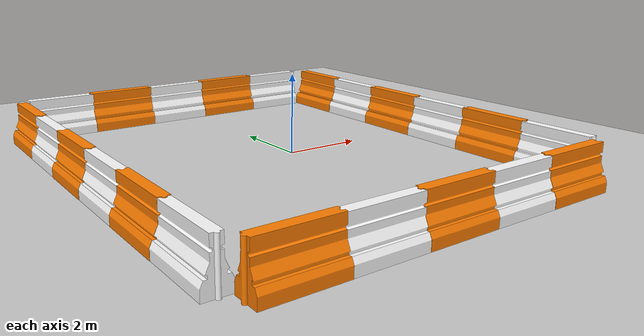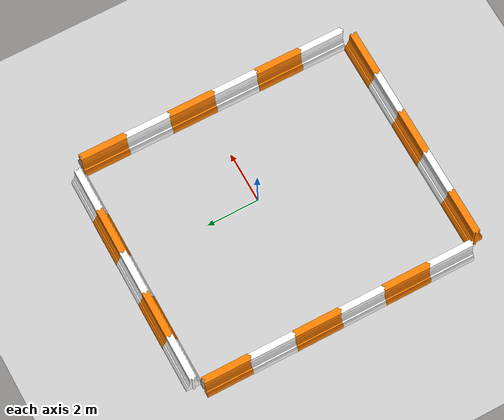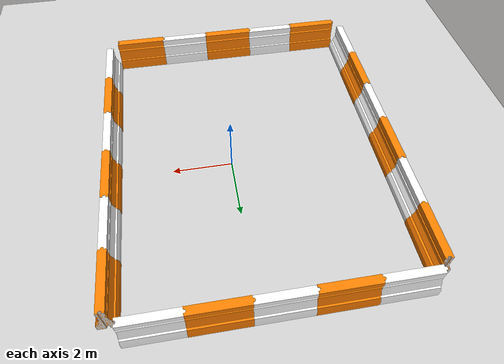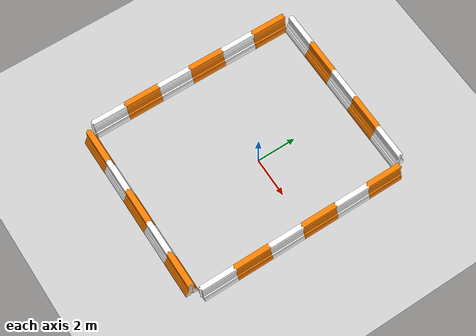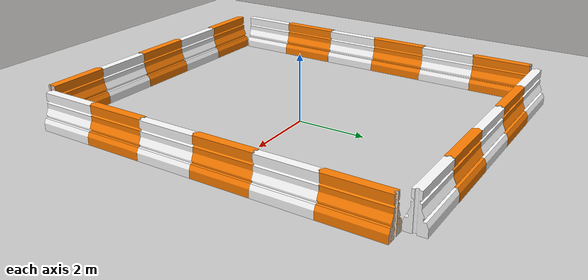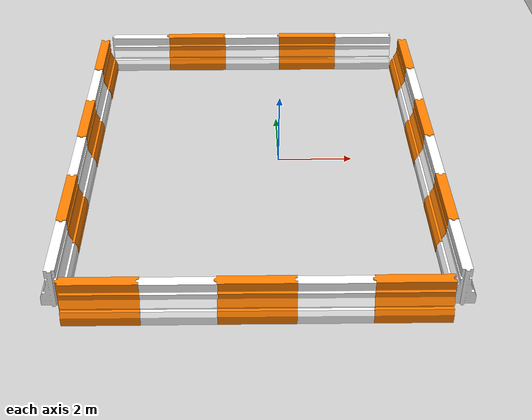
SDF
<sdf version="1.4">
 <world name="default">
  <light name="sun" type="directional">
   <pose>0 0 10 0 -0 0</pose>
   <diffuse>0.8 0.8 0.8 1</diffuse>
   <specular>0.2 0.2 0.2 1</specular>
   <attenuation>
    <range>1000</range>
    <constant>0.9</constant>
    <linear>0.01</linear>
    <quadratic>0.001</quadratic>
   </attenuation>
   <direction>-0.5 0.1 -0.9</direction>
  </light>
  <physics type="ode">
   <max_step_size>0.001</max_step_size>
   <real_time_factor>1</real_time_factor>
   <real_time_update_rate>1000</real_time_update_rate>
   <gravity>0 0 -9.8</gravity>
  </physics>
  <scene><ambient>0.4 0.4 0.4 1</ambient><background>0.7 0.7 0.7 1</background><shadows>1</shadows></scene>
  <spherical_coordinates>
   <surface_model>EARTH_WGS84</surface_model>
   <latitude_deg>0</latitude_deg>
   <longitude_deg>0</longitude_deg>
   <elevation>0</elevation>
   <heading_deg>0</heading_deg>
  </spherical_coordinates>
  <model name="drc_practice_organge_jersey_barrier_11">
   <static>1</static>
   <link name="link">
    <visual name="visual">
     <geometry>
      <mesh><uri>model://drc_practice_orange_jersey_barrier/meshes/jersey_barrier.dae</uri></mesh>
     </geometry>
    </visual>
    <collision name="collision">
     <geometry>
      <mesh><uri>model://drc_practice_orange_jersey_barrier/meshes/jersey_barrier.dae</uri></mesh>
     </geometry>
    </collision>
    <velocity_decay><linear>0</linear><angular>0</angular></velocity_decay>
   </link>
   <pose>4.00927 3.97639 0 0 -0 0</pose>
  </model>
  <model name="drc_practice_organge_jersey_barrier_12">
   <static>1</static>
   <link name="link">
    <visual name="visual">
     <geometry>
      <mesh><uri>model://drc_practice_orange_jersey_barrier/meshes/jersey_barrier.dae</uri></mesh>
     </geometry>
    </visual>
    <collision name="collision">
     <geometry>
      <mesh><uri>model://drc_practice_orange_jersey_barrier/meshes/jersey_barrier.dae</uri></mesh>
     </geometry>
    </collision>
    <velocity_decay><linear>0</linear><angular>0</angular></velocity_decay>
   </link>
   <pose>-2.3851 5.16969 0 0 0 -1.5708</pose>
  </model>
  <model name="drc_practice_white_jersey_barrier_8">
   <static>1</static>
   <link name="link">
    <visual name="visual">
     <geometry>
      <mesh><uri>model://drc_practice_white_jersey_barrier/meshes/jersey_barrier.dae</uri></mesh>
     </geometry>
    </visual>
    <collision name="collision">
     <geometry>
      <mesh><uri>model://drc_practice_white_jersey_barrier/meshes/jersey_barrier.dae</uri></mesh>
     </geometry>
    </collision>
    <velocity_decay><linear>0</linear><angular>0</angular></velocity_decay>
   </link>
   <pose>4.00519 2.23845 0 0 -0 0</pose>
  </model>
  <model name="drc_practice_white_jersey_barrier_9">
   <static>1</static>
   <link name="link">
    <visual name="visual">
     <geometry>
      <mesh><uri>model://drc_practice_white_jersey_barrier/meshes/jersey_barrier.dae</uri></mesh>
     </geometry>
    </visual>
    <collision name="collision">
     <geometry>
      <mesh><uri>model://drc_practice_white_jersey_barrier/meshes/jersey_barrier.dae</uri></mesh>
     </geometry>
    </collision>
    <velocity_decay><linear>0</linear><angular>0</angular></velocity_decay>
   </link>
   <pose>-5.28019 -4.60783 0 0 -0 0</pose>
  </model>
  <model name="drc_practice_organge_jersey_barrier_13">
   <static>1</static>
   <link name="link">
    <visual name="visual">
     <geometry>
      <mesh><uri>model://drc_practice_orange_jersey_barrier/meshes/jersey_barrier.dae</uri></mesh>
     </geometry>
    </visual>
    <collision name="collision">
     <geometry>
      <mesh><uri>model://drc_practice_orange_jersey_barrier/meshes/jersey_barrier.dae</uri></mesh>
     </geometry>
    </collision>
    <velocity_decay><linear>0</linear><angular>0</angular></velocity_decay>
   </link>
   <pose>3.99189 0.494887 0 0 -0 0</pose>
  </model>
  <model name="drc_practice_organge_jersey_barrier_14">
   <static>1</static>
   <link name="link">
    <visual name="visual">
     <geometry>
      <mesh><uri>model://drc_practice_orange_jersey_barrier/meshes/jersey_barrier.dae</uri></mesh>
     </geometry>
    </visual>
    <collision name="collision">
     <geometry>
      <mesh><uri>model://drc_practice_orange_jersey_barrier/meshes/jersey_barrier.dae</uri></mesh>
     </geometry>
    </collision>
    <velocity_decay><linear>0</linear><angular>0</angular></velocity_decay>
   </link>
   <pose>-5.27338 -2.87968 0 0 -0 0</pose>
  </model>
  <model name="drc_practice_white_jersey_barrier_10">
   <static>1</static>
   <link name="link">
    <visual name="visual">
     <geometry>
      <mesh><uri>model://drc_practice_white_jersey_barrier/meshes/jersey_barrier.dae</uri></mesh>
     </geometry>
    </visual>
    <collision name="collision">
     <geometry>
      <mesh><uri>model://drc_practice_white_jersey_barrier/meshes/jersey_barrier.dae</uri></mesh>
     </geometry>
    </collision>
    <velocity_decay><linear>0</linear><angular>0</angular></velocity_decay>
   </link>
   <pose>3.98445 -1.23783 0 0 -0 0</pose>
  </model>
  <model name="drc_practice_organge_jersey_barrier_15">
   <static>1</static>
   <link name="link">
    <visual name="visual">
     <geometry>
      <mesh><uri>model://drc_practice_orange_jersey_barrier/meshes/jersey_barrier.dae</uri></mesh>
     </geometry>
    </visual>
    <collision name="collision">
     <geometry>
      <mesh><uri>model://drc_practice_orange_jersey_barrier/meshes/jersey_barrier.dae</uri></mesh>
     </geometry>
    </collision>
    <velocity_decay><linear>0</linear><angular>0</angular></velocity_decay>
   </link>
   <pose>-5.2584 0.584015 0 0 -0 0</pose>
  </model>
  <model name="drc_practice_white_jersey_barrier_12">
   <static>1</static>
   <link name="link">
    <visual name="visual">
     <geometry>
      <mesh><uri>model://drc_practice_white_jersey_barrier/meshes/jersey_barrier.dae</uri></mesh>
     </geometry>
    </visual>
    <collision name="collision">
     <geometry>
      <mesh><uri>model://drc_practice_white_jersey_barrier/meshes/jersey_barrier.dae</uri></mesh>
     </geometry>
    </collision>
    <velocity_decay><linear>0</linear><angular>0</angular></velocity_decay>
   </link>
   <pose>-5.26587 -1.14604 0 0 -0 0</pose>
  </model>
  <model name="drc_practice_organge_jersey_barrier_16">
   <static>1</static>
   <link name="link">
    <visual name="visual">
     <geometry>
      <mesh><uri>model://drc_practice_orange_jersey_barrier/meshes/jersey_barrier.dae</uri></mesh>
     </geometry>
    </visual>
    <collision name="collision">
     <geometry>
      <mesh><uri>model://drc_practice_orange_jersey_barrier/meshes/jersey_barrier.dae</uri></mesh>
     </geometry>
    </collision>
    <velocity_decay><linear>0</linear><angular>0</angular></velocity_decay>
   </link>
   <pose>-5.22768 4.04622 0 0 -0 0</pose>
  </model>
  <model name="drc_practice_organge_jersey_barrier_17">
   <static>1</static>
   <link name="link">
    <visual name="visual">
     <geometry>
      <mesh><uri>model://drc_practice_orange_jersey_barrier/meshes/jersey_barrier.dae</uri></mesh>
     </geometry>
    </visual>
    <collision name="collision">
     <geometry>
      <mesh><uri>model://drc_practice_orange_jersey_barrier/meshes/jersey_barrier.dae</uri></mesh>
     </geometry>
    </collision>
    <velocity_decay><linear>0</linear><angular>0</angular></velocity_decay>
   </link>
   <pose>3.97416 -2.97601 0 0 -0 0</pose>
  </model>
  <model name="drc_practice_white_jersey_barrier_13">
   <static>1</static>
   <link name="link">
    <visual name="visual">
     <geometry>
      <mesh><uri>model://drc_practice_white_jersey_barrier/meshes/jersey_barrier.dae</uri></mesh>
     </geometry>
    </visual>
    <collision name="collision">
     <geometry>
      <mesh><uri>model://drc_practice_white_jersey_barrier/meshes/jersey_barrier.dae</uri></mesh>
     </geometry>
    </collision>
    <velocity_decay><linear>0</linear><angular>0</angular></velocity_decay>
   </link>
   <pose>3.96996 -4.70533 0 0 -0 0</pose>
  </model>
  <model name="drc_practice_organge_jersey_barrier_20">
   <static>1</static>
   <link name="link">
    <visual name="visual">
     <geometry>
      <mesh><uri>model://drc_practice_orange_jersey_barrier/meshes/jersey_barrier.dae</uri></mesh>
     </geometry>
    </visual>
    <collision name="collision">
     <geometry>
      <mesh><uri>model://drc_practice_orange_jersey_barrier/meshes/jersey_barrier.dae</uri></mesh>
     </geometry>
    </collision>
    <velocity_decay><linear>0</linear><angular>0</angular></velocity_decay>
   </link>
   <pose>2.77664 -5.85894 0 0 0 -1.5708</pose>
  </model>
  <model name="drc_practice_white_jersey_barrier_16">
   <static>1</static>
   <link name="link">
    <visual name="visual">
     <geometry>
      <mesh><uri>model://drc_practice_white_jersey_barrier/meshes/jersey_barrier.dae</uri></mesh>
     </geometry>
    </visual>
    <collision name="collision">
     <geometry>
      <mesh><uri>model://drc_practice_white_jersey_barrier/meshes/jersey_barrier.dae</uri></mesh>
     </geometry>
    </collision>
    <velocity_decay><linear>0</linear><angular>0</angular></velocity_decay>
   </link>
   <pose>1.04377 -5.85172 0 0 0 -1.5708</pose>
  </model>
  <model name="drc_practice_white_jersey_barrier_17">
   <static>1</static>
   <link name="link">
    <visual name="visual">
     <geometry>
      <mesh><uri>model://drc_practice_white_jersey_barrier/meshes/jersey_barrier.dae</uri></mesh>
     </geometry>
    </visual>
    <collision name="collision">
     <geometry>
      <mesh><uri>model://drc_practice_white_jersey_barrier/meshes/jersey_barrier.dae</uri></mesh>
     </geometry>
    </collision>
    <velocity_decay><linear>0</linear><angular>0</angular></velocity_decay>
   </link>
   <pose>-2.42128 -5.83786 0 0 0 -1.5708</pose>
  </model>
  <model name="drc_practice_organge_jersey_barrier_21">
   <static>1</static>
   <link name="link">
    <visual name="visual">
     <geometry>
      <mesh><uri>model://drc_practice_orange_jersey_barrier/meshes/jersey_barrier.dae</uri></mesh>
     </geometry>
    </visual>
    <collision name="collision">
     <geometry>
      <mesh><uri>model://drc_practice_orange_jersey_barrier/meshes/jersey_barrier.dae</uri></mesh>
     </geometry>
    </collision>
    <velocity_decay><linear>0</linear><angular>0</angular></velocity_decay>
   </link>
   <pose>-0.69148 -5.84257 0 0 0 -1.5708</pose>
  </model>
  <model name="drc_practice_organge_jersey_barrier_22">
   <static>1</static>
   <link name="link">
    <visual name="visual">
     <geometry>
      <mesh><uri>model://drc_practice_orange_jersey_barrier/meshes/jersey_barrier.dae</uri></mesh>
     </geometry>
    </visual>
    <collision name="collision">
     <geometry>
      <mesh><uri>model://drc_practice_orange_jersey_barrier/meshes/jersey_barrier.dae</uri></mesh>
     </geometry>
    </collision>
    <velocity_decay><linear>0</linear><angular>0</angular></velocity_decay>
   </link>
   <pose>-4.15577 -5.83314 0 0 0 -1.5708</pose>
  </model>
  <model name="drc_practice_organge_jersey_barrier_23">
   <static>1</static>
   <link name="link">
    <visual name="visual">
     <geometry>
      <mesh><uri>model://drc_practice_orange_jersey_barrier/meshes/jersey_barrier.dae</uri></mesh>
     </geometry>
    </visual>
    <collision name="collision">
     <geometry>
      <mesh><uri>model://drc_practice_orange_jersey_barrier/meshes/jersey_barrier.dae</uri></mesh>
     </geometry>
    </collision>
    <velocity_decay><linear>0</linear><angular>0</angular></velocity_decay>
   </link>
   <pose>1.07466 5.15528 0 0 0 -1.5708</pose>
  </model>
  <model name="drc_practice_white_jersey_barrier_19">
   <static>1</static>
   <link name="link">
    <visual name="visual">
     <geometry>
      <mesh><uri>model://drc_practice_white_jersey_barrier/meshes/jersey_barrier.dae</uri></mesh>
     </geometry>
    </visual>
    <collision name="collision">
     <geometry>
      <mesh><uri>model://drc_practice_white_jersey_barrier/meshes/jersey_barrier.dae</uri></mesh>
     </geometry>
    </collision>
    <velocity_decay><linear>0</linear><angular>0</angular></velocity_decay>
   </link>
   <pose>-5.24526 2.31492 0 0 -0 0</pose>
  </model>
  <model name="drc_practice_white_jersey_barrier_20">
   <static>1</static>
   <link name="link">
    <visual name="visual">
     <geometry>
      <mesh><uri>model://drc_practice_white_jersey_barrier/meshes/jersey_barrier.dae</uri></mesh>
     </geometry>
    </visual>
    <collision name="collision">
     <geometry>
      <mesh><uri>model://drc_practice_white_jersey_barrier/meshes/jersey_barrier.dae</uri></mesh>
     </geometry>
    </collision>
    <velocity_decay><linear>0</linear><angular>0</angular></velocity_decay>
   </link>
   <pose>-0.651873 5.16312 0 0 0 -1.5708</pose>
  </model>
  <model name="drc_practice_white_jersey_barrier_21">
   <static>1</static>
   <link name="link">
    <visual name="visual">
     <geometry>
      <mesh><uri>model://drc_practice_white_jersey_barrier/meshes/jersey_barrier.dae</uri></mesh>
     </geometry>
    </visual>
    <collision name="collision">
     <geometry>
      <mesh><uri>model://drc_practice_white_jersey_barrier/meshes/jersey_barrier.dae</uri></mesh>
     </geometry>
    </collision>
    <velocity_decay><linear>0</linear><angular>0</angular></velocity_decay>
   </link>
   <pose>2.81408 5.1436 0 0 0 -1.5708</pose>
  </model>
  <model name="drc_practice_white_jersey_barrier_22">
   <static>1</static>
   <link name="link">
    <visual name="visual">
     <geometry>
      <mesh><uri>model://drc_practice_white_jersey_barrier/meshes/jersey_barrier.dae</uri></mesh>
     </geometry>
    </visual>
    <collision name="collision">
     <geometry>
      <mesh><uri>model://drc_practice_white_jersey_barrier/meshes/jersey_barrier.dae</uri></mesh>
     </geometry>
    </collision>
    <velocity_decay><linear>0</linear><angular>0</angular></velocity_decay>
   </link>
   <pose>-4.11666 5.17419 0 0 0 -1.5708</pose>
  </model>
  <model name="ground_plane">
   <static>1</static>
   <link name="link">
    <collision name="collision">
     <geometry><plane><normal>0 0 1</normal><size>100 100</size></plane></geometry>
     <surface><friction><ode><mu>100</mu><mu2>50</mu2></ode></friction></surface>
    </collision>
    <visual name="visual">
     <cast_shadows>0</cast_shadows>
     <geometry><plane><normal>0 0 1</normal><size>100 100</size></plane></geometry>
     <material>
      <script><uri>file://media/materials/scripts/gazebo.material</uri><name>Gazebo/Grey</name></script>
     </material>
    </visual>
    <velocity_decay><linear>0</linear><angular>0</angular></velocity_decay>
   </link>
   <pose>-7.59275 -7.41156 0 0 -0 0</pose>
  </model>
 </world>
</sdf>
